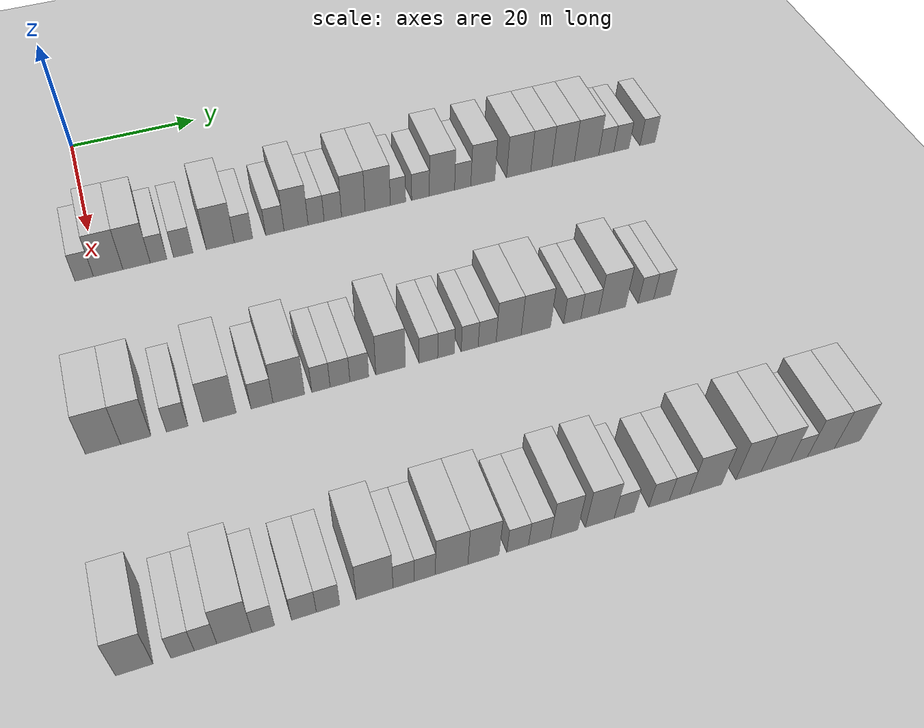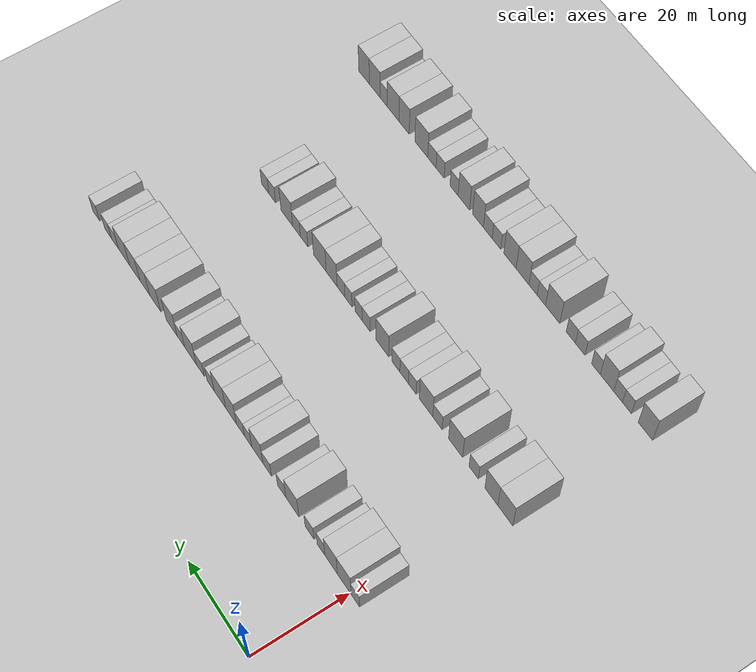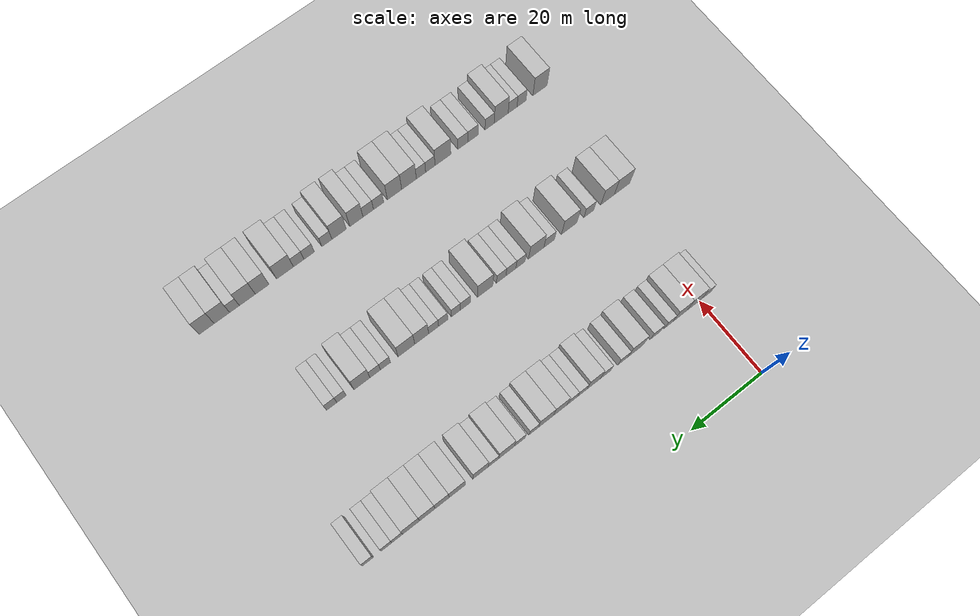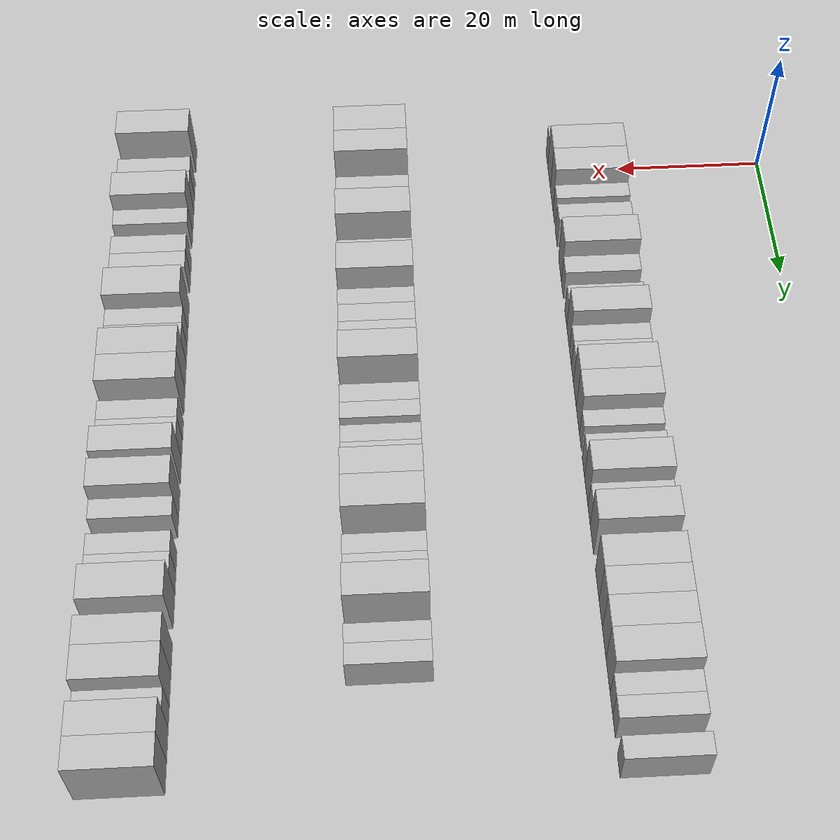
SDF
<sdf version="1.6">
 <world name="default">
  <include><name>ground_plane_1</name><uri>model://HANNAS_ground_plane</uri></include>
  <include>
   <name>ground_plane_2</name>
   <uri>model://HANNAS_ground_plane</uri>
   <pose>100 0 0  0 0 0</pose>
  </include>
  <model name="building_72">
   <static>1</static>
   <pose>25.0000 -1.7708 0 0.000000 0.000000 0.000000</pose>
   <link name="link">
    <pose>0 0 3.00 0 0 0</pose>
    <collision name="collision"><geometry><box><size>10.0000 2.6806 6.0000</size></box></geometry></collision>
    <visual name="visual">
     <cast_shadows>0</cast_shadows>
     <geometry><box><size>10.0000 2.6806 6.0000</size></box></geometry>
     <material>
      <script>
       <uri>model://HANNAS_wall/materials/scripts</uri>
       <uri>model://HANNAS_wall/materials/textures</uri>
       <name>vrc/HANNAS_wall</name>
      </script>
     </material>
    </visual>
   </link>
  </model>
  <model name="building_73">
   <static>1</static>
   <pose>25.0000 1.7090 0 0.000000 0.000000 0.000000</pose>
   <link name="link">
    <pose>0 0 4.50 0 0 0</pose>
    <collision name="collision"><geometry><box><size>10.0000 4.2791 9.0000</size></box></geometry></collision>
    <visual name="visual">
     <cast_shadows>0</cast_shadows>
     <geometry><box><size>10.0000 4.2791 9.0000</size></box></geometry>
     <material>
      <script>
       <uri>model://HANNAS_wall/materials/scripts</uri>
       <uri>model://HANNAS_wall/materials/textures</uri>
       <name>vrc/HANNAS_wall</name>
      </script>
     </material>
    </visual>
   </link>
  </model>
  <model name="building_74">
   <static>1</static>
   <pose>25.0000 5.8547 0 0.000000 0.000000 0.000000</pose>
   <link name="link">
    <pose>0 0 4.50 0 0 0</pose>
    <collision name="collision"><geometry><box><size>10.0000 4.0123 9.0000</size></box></geometry></collision>
    <visual name="visual">
     <cast_shadows>0</cast_shadows>
     <geometry><box><size>10.0000 4.0123 9.0000</size></box></geometry>
     <material>
      <script>
       <uri>model://HANNAS_wall/materials/scripts</uri>
       <uri>model://HANNAS_wall/materials/textures</uri>
       <name>vrc/HANNAS_wall</name>
      </script>
     </material>
    </visual>
   </link>
  </model>
  <model name="building_75">
   <static>1</static>
   <pose>25.0000 9.0855 0 0.000000 0.000000 0.000000</pose>
   <link name="link">
    <pose>0 0 3.00 0 0 0</pose>
    <collision name="collision"><geometry><box><size>10.0000 2.4494 6.0000</size></box></geometry></collision>
    <visual name="visual">
     <cast_shadows>0</cast_shadows>
     <geometry><box><size>10.0000 2.4494 6.0000</size></box></geometry>
     <material>
      <script>
       <uri>model://HANNAS_wall/materials/scripts</uri>
       <uri>model://HANNAS_wall/materials/textures</uri>
       <name>vrc/HANNAS_wall</name>
      </script>
     </material>
    </visual>
   </link>
  </model>
  <model name="building_76">
   <static>1</static>
   <pose>25.0000 12.7582 0 0.000000 0.000000 0.000000</pose>
   <link name="link">
    <pose>0 0 3.00 0 0 0</pose>
    <collision name="collision"><geometry><box><size>10.0000 2.8961 6.0000</size></box></geometry></collision>
    <visual name="visual">
     <cast_shadows>0</cast_shadows>
     <geometry><box><size>10.0000 2.8961 6.0000</size></box></geometry>
     <material>
      <script>
       <uri>model://HANNAS_wall/materials/scripts</uri>
       <uri>model://HANNAS_wall/materials/textures</uri>
       <name>vrc/HANNAS_wall</name>
      </script>
     </material>
    </visual>
   </link>
  </model>
  <model name="building_77">
   <static>1</static>
   <pose>25.0000 18.3284 0 0.000000 0.000000 0.000000</pose>
   <link name="link">
    <pose>0 0 4.50 0 0 0</pose>
    <collision name="collision"><geometry><box><size>10.0000 4.2442 9.0000</size></box></geometry></collision>
    <visual name="visual">
     <cast_shadows>0</cast_shadows>
     <geometry><box><size>10.0000 4.2442 9.0000</size></box></geometry>
     <material>
      <script>
       <uri>model://HANNAS_wall/materials/scripts</uri>
       <uri>model://HANNAS_wall/materials/textures</uri>
       <name>vrc/HANNAS_wall</name>
      </script>
     </material>
    </visual>
   </link>
  </model>
  <model name="building_78">
   <static>1</static>
   <pose>25.0000 21.8539 0 0.000000 0.000000 0.000000</pose>
   <link name="link">
    <pose>0 0 3.00 0 0 0</pose>
    <collision name="collision"><geometry><box><size>10.0000 2.8067 6.0000</size></box></geometry></collision>
    <visual name="visual">
     <cast_shadows>0</cast_shadows>
     <geometry><box><size>10.0000 2.8067 6.0000</size></box></geometry>
     <material>
      <script>
       <uri>model://HANNAS_wall/materials/scripts</uri>
       <uri>model://HANNAS_wall/materials/textures</uri>
       <name>vrc/HANNAS_wall</name>
      </script>
     </material>
    </visual>
   </link>
  </model>
  <model name="building_79">
   <static>1</static>
   <pose>25.0000 26.6800 0 0.000000 0.000000 0.000000</pose>
   <link name="link">
    <pose>0 0 3.00 0 0 0</pose>
    <collision name="collision"><geometry><box><size>10.0000 2.8456 6.0000</size></box></geometry></collision>
    <visual name="visual">
     <cast_shadows>0</cast_shadows>
     <geometry><box><size>10.0000 2.8456 6.0000</size></box></geometry>
     <material>
      <script>
       <uri>model://HANNAS_wall/materials/scripts</uri>
       <uri>model://HANNAS_wall/materials/textures</uri>
       <name>vrc/HANNAS_wall</name>
      </script>
     </material>
    </visual>
   </link>
  </model>
  <model name="building_80">
   <static>1</static>
   <pose>25.0000 29.9816 0 0.000000 0.000000 0.000000</pose>
   <link name="link">
    <pose>0 0 4.50 0 0 0</pose>
    <collision name="collision"><geometry><box><size>10.0000 3.7574 9.0000</size></box></geometry></collision>
    <visual name="visual">
     <cast_shadows>0</cast_shadows>
     <geometry><box><size>10.0000 3.7574 9.0000</size></box></geometry>
     <material>
      <script>
       <uri>model://HANNAS_wall/materials/scripts</uri>
       <uri>model://HANNAS_wall/materials/textures</uri>
       <name>vrc/HANNAS_wall</name>
      </script>
     </material>
    </visual>
   </link>
  </model>
  <model name="building_81">
   <static>1</static>
   <pose>25.0000 33.1149 0 0.000000 0.000000 0.000000</pose>
   <link name="link">
    <pose>0 0 3.00 0 0 0</pose>
    <collision name="collision"><geometry><box><size>10.0000 2.5092 6.0000</size></box></geometry></collision>
    <visual name="visual">
     <cast_shadows>0</cast_shadows>
     <geometry><box><size>10.0000 2.5092 6.0000</size></box></geometry>
     <material>
      <script>
       <uri>model://HANNAS_wall/materials/scripts</uri>
       <uri>model://HANNAS_wall/materials/textures</uri>
       <name>vrc/HANNAS_wall</name>
      </script>
     </material>
    </visual>
   </link>
  </model>
  <model name="building_82">
   <static>1</static>
   <pose>25.0000 35.7522 0 0.000000 0.000000 0.000000</pose>
   <link name="link">
    <pose>0 0 3.00 0 0 0</pose>
    <collision name="collision"><geometry><box><size>10.0000 2.7656 6.0000</size></box></geometry></collision>
    <visual name="visual">
     <cast_shadows>0</cast_shadows>
     <geometry><box><size>10.0000 2.7656 6.0000</size></box></geometry>
     <material>
      <script>
       <uri>model://HANNAS_wall/materials/scripts</uri>
       <uri>model://HANNAS_wall/materials/textures</uri>
       <name>vrc/HANNAS_wall</name>
      </script>
     </material>
    </visual>
   </link>
  </model>
  <model name="building_83">
   <static>1</static>
   <pose>25.0000 39.0147 0 0.000000 0.000000 0.000000</pose>
   <link name="link">
    <pose>0 0 4.50 0 0 0</pose>
    <collision name="collision"><geometry><box><size>10.0000 3.7594 9.0000</size></box></geometry></collision>
    <visual name="visual">
     <cast_shadows>0</cast_shadows>
     <geometry><box><size>10.0000 3.7594 9.0000</size></box></geometry>
     <material>
      <script>
       <uri>model://HANNAS_wall/materials/scripts</uri>
       <uri>model://HANNAS_wall/materials/textures</uri>
       <name>vrc/HANNAS_wall</name>
      </script>
     </material>
    </visual>
   </link>
  </model>
  <model name="building_84">
   <static>1</static>
   <pose>25.0000 42.9203 0 0.000000 0.000000 0.000000</pose>
   <link name="link">
    <pose>0 0 4.50 0 0 0</pose>
    <collision name="collision"><geometry><box><size>10.0000 4.0519 9.0000</size></box></geometry></collision>
    <visual name="visual">
     <cast_shadows>0</cast_shadows>
     <geometry><box><size>10.0000 4.0519 9.0000</size></box></geometry>
     <material>
      <script>
       <uri>model://HANNAS_wall/materials/scripts</uri>
       <uri>model://HANNAS_wall/materials/textures</uri>
       <name>vrc/HANNAS_wall</name>
      </script>
     </material>
    </visual>
   </link>
  </model>
  <model name="building_85">
   <static>1</static>
   <pose>25.0000 46.1844 0 0.000000 0.000000 0.000000</pose>
   <link name="link">
    <pose>0 0 3.00 0 0 0</pose>
    <collision name="collision"><geometry><box><size>10.0000 2.4764 6.0000</size></box></geometry></collision>
    <visual name="visual">
     <cast_shadows>0</cast_shadows>
     <geometry><box><size>10.0000 2.4764 6.0000</size></box></geometry>
     <material>
      <script>
       <uri>model://HANNAS_wall/materials/scripts</uri>
       <uri>model://HANNAS_wall/materials/textures</uri>
       <name>vrc/HANNAS_wall</name>
      </script>
     </material>
    </visual>
   </link>
  </model>
  <model name="building_86">
   <static>1</static>
   <pose>25.0000 49.8609 0 0.000000 0.000000 0.000000</pose>
   <link name="link">
    <pose>0 0 3.00 0 0 0</pose>
    <collision name="collision"><geometry><box><size>10.0000 2.8766 6.0000</size></box></geometry></collision>
    <visual name="visual">
     <cast_shadows>0</cast_shadows>
     <geometry><box><size>10.0000 2.8766 6.0000</size></box></geometry>
     <material>
      <script>
       <uri>model://HANNAS_wall/materials/scripts</uri>
       <uri>model://HANNAS_wall/materials/textures</uri>
       <name>vrc/HANNAS_wall</name>
      </script>
     </material>
    </visual>
   </link>
  </model>
  <model name="building_87">
   <static>1</static>
   <pose>25.0000 53.3857 0 0.000000 0.000000 0.000000</pose>
   <link name="link">
    <pose>0 0 4.50 0 0 0</pose>
    <collision name="collision"><geometry><box><size>10.0000 4.1731 9.0000</size></box></geometry></collision>
    <visual name="visual">
     <cast_shadows>0</cast_shadows>
     <geometry><box><size>10.0000 4.1731 9.0000</size></box></geometry>
     <material>
      <script>
       <uri>model://HANNAS_wall/materials/scripts</uri>
       <uri>model://HANNAS_wall/materials/textures</uri>
       <name>vrc/HANNAS_wall</name>
      </script>
     </material>
    </visual>
   </link>
  </model>
  <model name="building_88">
   <static>1</static>
   <pose>25.0000 56.8203 0 0.000000 0.000000 0.000000</pose>
   <link name="link">
    <pose>0 0 3.00 0 0 0</pose>
    <collision name="collision"><geometry><box><size>10.0000 2.6962 6.0000</size></box></geometry></collision>
    <visual name="visual">
     <cast_shadows>0</cast_shadows>
     <geometry><box><size>10.0000 2.6962 6.0000</size></box></geometry>
     <material>
      <script>
       <uri>model://HANNAS_wall/materials/scripts</uri>
       <uri>model://HANNAS_wall/materials/textures</uri>
       <name>vrc/HANNAS_wall</name>
      </script>
     </material>
    </visual>
   </link>
  </model>
  <model name="building_89">
   <static>1</static>
   <pose>25.0000 60.1842 0 0.000000 0.000000 0.000000</pose>
   <link name="link">
    <pose>0 0 4.50 0 0 0</pose>
    <collision name="collision"><geometry><box><size>10.0000 4.0316 9.0000</size></box></geometry></collision>
    <visual name="visual">
     <cast_shadows>0</cast_shadows>
     <geometry><box><size>10.0000 4.0316 9.0000</size></box></geometry>
     <material>
      <script>
       <uri>model://HANNAS_wall/materials/scripts</uri>
       <uri>model://HANNAS_wall/materials/textures</uri>
       <name>vrc/HANNAS_wall</name>
      </script>
     </material>
    </visual>
   </link>
  </model>
  <model name="building_90">
   <static>1</static>
   <pose>25.0000 66.2574 0 0.000000 0.000000 0.000000</pose>
   <link name="link">
    <pose>0 0 4.50 0 0 0</pose>
    <collision name="collision"><geometry><box><size>10.0000 4.1148 9.0000</size></box></geometry></collision>
    <visual name="visual">
     <cast_shadows>0</cast_shadows>
     <geometry><box><size>10.0000 4.1148 9.0000</size></box></geometry>
     <material>
      <script>
       <uri>model://HANNAS_wall/materials/scripts</uri>
       <uri>model://HANNAS_wall/materials/textures</uri>
       <name>vrc/HANNAS_wall</name>
      </script>
     </material>
    </visual>
   </link>
  </model>
  <model name="building_91">
   <static>1</static>
   <pose>25.0000 70.1312 0 0.000000 0.000000 0.000000</pose>
   <link name="link">
    <pose>0 0 4.50 0 0 0</pose>
    <collision name="collision"><geometry><box><size>10.0000 3.6327 9.0000</size></box></geometry></collision>
    <visual name="visual">
     <cast_shadows>0</cast_shadows>
     <geometry><box><size>10.0000 3.6327 9.0000</size></box></geometry>
     <material>
      <script>
       <uri>model://HANNAS_wall/materials/scripts</uri>
       <uri>model://HANNAS_wall/materials/textures</uri>
       <name>vrc/HANNAS_wall</name>
      </script>
     </material>
    </visual>
   </link>
  </model>
  <model name="building_92">
   <static>1</static>
   <pose>25.0000 73.9086 0 0.000000 0.000000 0.000000</pose>
   <link name="link">
    <pose>0 0 4.50 0 0 0</pose>
    <collision name="collision"><geometry><box><size>10.0000 3.9221 9.0000</size></box></geometry></collision>
    <visual name="visual">
     <cast_shadows>0</cast_shadows>
     <geometry><box><size>10.0000 3.9221 9.0000</size></box></geometry>
     <material>
      <script>
       <uri>model://HANNAS_wall/materials/scripts</uri>
       <uri>model://HANNAS_wall/materials/textures</uri>
       <name>vrc/HANNAS_wall</name>
      </script>
     </material>
    </visual>
   </link>
  </model>
  <model name="building_93">
   <static>1</static>
   <pose>25.0000 77.9996 0 0.000000 0.000000 0.000000</pose>
   <link name="link">
    <pose>0 0 4.50 0 0 0</pose>
    <collision name="collision"><geometry><box><size>10.0000 4.2598 9.0000</size></box></geometry></collision>
    <visual name="visual">
     <cast_shadows>0</cast_shadows>
     <geometry><box><size>10.0000 4.2598 9.0000</size></box></geometry>
     <material>
      <script>
       <uri>model://HANNAS_wall/materials/scripts</uri>
       <uri>model://HANNAS_wall/materials/textures</uri>
       <name>vrc/HANNAS_wall</name>
      </script>
     </material>
    </visual>
   </link>
  </model>
  <model name="building_94">
   <static>1</static>
   <pose>25.0000 81.4691 0 0.000000 0.000000 0.000000</pose>
   <link name="link">
    <pose>0 0 3.00 0 0 0</pose>
    <collision name="collision"><geometry><box><size>10.0000 2.6792 6.0000</size></box></geometry></collision>
    <visual name="visual">
     <cast_shadows>0</cast_shadows>
     <geometry><box><size>10.0000 2.6792 6.0000</size></box></geometry>
     <material>
      <script>
       <uri>model://HANNAS_wall/materials/scripts</uri>
       <uri>model://HANNAS_wall/materials/textures</uri>
       <name>vrc/HANNAS_wall</name>
      </script>
     </material>
    </visual>
   </link>
  </model>
  <model name="building_95">
   <static>1</static>
   <pose>25.0000 84.1413 0 0.000000 0.000000 0.000000</pose>
   <link name="link">
    <pose>0 0 3.00 0 0 0</pose>
    <collision name="collision"><geometry><box><size>10.0000 2.6652 6.0000</size></box></geometry></collision>
    <visual name="visual">
     <cast_shadows>0</cast_shadows>
     <geometry><box><size>10.0000 2.6652 6.0000</size></box></geometry>
     <material>
      <script>
       <uri>model://HANNAS_wall/materials/scripts</uri>
       <uri>model://HANNAS_wall/materials/textures</uri>
       <name>vrc/HANNAS_wall</name>
      </script>
     </material>
    </visual>
   </link>
  </model>
  <model name="building_96">
   <static>1</static>
   <pose>25.0000 88.8172 0 0.000000 0.000000 0.000000</pose>
   <link name="link">
    <pose>0 0 3.00 0 0 0</pose>
    <collision name="collision"><geometry><box><size>10.0000 2.6864 6.0000</size></box></geometry></collision>
    <visual name="visual">
     <cast_shadows>0</cast_shadows>
     <geometry><box><size>10.0000 2.6864 6.0000</size></box></geometry>
     <material>
      <script>
       <uri>model://HANNAS_wall/materials/scripts</uri>
       <uri>model://HANNAS_wall/materials/textures</uri>
       <name>vrc/HANNAS_wall</name>
      </script>
     </material>
    </visual>
   </link>
  </model>
  <model name="building_216">
   <static>1</static>
   <pose>55.0000 -3.3062 0 0.000000 0.000000 0.000000</pose>
   <link name="link">
    <pose>0 0 4.50 0 0 0</pose>
    <collision name="collision"><geometry><box><size>10.0000 4.4954 9.0000</size></box></geometry></collision>
    <visual name="visual">
     <cast_shadows>0</cast_shadows>
     <geometry><box><size>10.0000 4.4954 9.0000</size></box></geometry>
     <material>
      <script>
       <uri>model://HANNAS_wall/materials/scripts</uri>
       <uri>model://HANNAS_wall/materials/textures</uri>
       <name>vrc/HANNAS_wall</name>
      </script>
     </material>
    </visual>
   </link>
  </model>
  <model name="building_217">
   <static>1</static>
   <pose>55.0000 0.8998 0 0.000000 0.000000 0.000000</pose>
   <link name="link">
    <pose>0 0 4.50 0 0 0</pose>
    <collision name="collision"><geometry><box><size>10.0000 3.9165 9.0000</size></box></geometry></collision>
    <visual name="visual">
     <cast_shadows>0</cast_shadows>
     <geometry><box><size>10.0000 3.9165 9.0000</size></box></geometry>
     <material>
      <script>
       <uri>model://HANNAS_wall/materials/scripts</uri>
       <uri>model://HANNAS_wall/materials/textures</uri>
       <name>vrc/HANNAS_wall</name>
      </script>
     </material>
    </visual>
   </link>
  </model>
  <model name="building_218">
   <static>1</static>
   <pose>55.0000 6.2835 0 0.000000 0.000000 0.000000</pose>
   <link name="link">
    <pose>0 0 3.00 0 0 0</pose>
    <collision name="collision"><geometry><box><size>10.0000 2.8508 6.0000</size></box></geometry></collision>
    <visual name="visual">
     <cast_shadows>0</cast_shadows>
     <geometry><box><size>10.0000 2.8508 6.0000</size></box></geometry>
     <material>
      <script>
       <uri>model://HANNAS_wall/materials/scripts</uri>
       <uri>model://HANNAS_wall/materials/textures</uri>
       <name>vrc/HANNAS_wall</name>
      </script>
     </material>
    </visual>
   </link>
  </model>
  <model name="building_219">
   <static>1</static>
   <pose>55.0000 11.9038 0 0.000000 0.000000 0.000000</pose>
   <link name="link">
    <pose>0 0 4.50 0 0 0</pose>
    <collision name="collision"><geometry><box><size>10.0000 4.3898 9.0000</size></box></geometry></collision>
    <visual name="visual">
     <cast_shadows>0</cast_shadows>
     <geometry><box><size>10.0000 4.3898 9.0000</size></box></geometry>
     <material>
      <script>
       <uri>model://HANNAS_wall/materials/scripts</uri>
       <uri>model://HANNAS_wall/materials/textures</uri>
       <name>vrc/HANNAS_wall</name>
      </script>
     </material>
    </visual>
   </link>
  </model>
  <model name="building_220">
   <static>1</static>
   <pose>55.0000 17.5852 0 0.000000 0.000000 0.000000</pose>
   <link name="link">
    <pose>0 0 3.00 0 0 0</pose>
    <collision name="collision"><geometry><box><size>10.0000 2.9729 6.0000</size></box></geometry></collision>
    <visual name="visual">
     <cast_shadows>0</cast_shadows>
     <geometry><box><size>10.0000 2.9729 6.0000</size></box></geometry>
     <material>
      <script>
       <uri>model://HANNAS_wall/materials/scripts</uri>
       <uri>model://HANNAS_wall/materials/textures</uri>
       <name>vrc/HANNAS_wall</name>
      </script>
     </material>
    </visual>
   </link>
  </model>
  <model name="building_221">
   <static>1</static>
   <pose>55.0000 21.2303 0 0.000000 0.000000 0.000000</pose>
   <link name="link">
    <pose>0 0 4.50 0 0 0</pose>
    <collision name="collision"><geometry><box><size>10.0000 4.3172 9.0000</size></box></geometry></collision>
    <visual name="visual">
     <cast_shadows>0</cast_shadows>
     <geometry><box><size>10.0000 4.3172 9.0000</size></box></geometry>
     <material>
      <script>
       <uri>model://HANNAS_wall/materials/scripts</uri>
       <uri>model://HANNAS_wall/materials/textures</uri>
       <name>vrc/HANNAS_wall</name>
      </script>
     </material>
    </visual>
   </link>
  </model>
  <model name="building_222">
   <static>1</static>
   <pose>55.0000 25.6539 0 0.000000 0.000000 0.000000</pose>
   <link name="link">
    <pose>0 0 3.00 0 0 0</pose>
    <collision name="collision"><geometry><box><size>10.0000 2.5300 6.0000</size></box></geometry></collision>
    <visual name="visual">
     <cast_shadows>0</cast_shadows>
     <geometry><box><size>10.0000 2.5300 6.0000</size></box></geometry>
     <material>
      <script>
       <uri>model://HANNAS_wall/materials/scripts</uri>
       <uri>model://HANNAS_wall/materials/textures</uri>
       <name>vrc/HANNAS_wall</name>
      </script>
     </material>
    </visual>
   </link>
  </model>
  <model name="building_223">
   <static>1</static>
   <pose>55.0000 28.2994 0 0.000000 0.000000 0.000000</pose>
   <link name="link">
    <pose>0 0 3.00 0 0 0</pose>
    <collision name="collision"><geometry><box><size>10.0000 2.7610 6.0000</size></box></geometry></collision>
    <visual name="visual">
     <cast_shadows>0</cast_shadows>
     <geometry><box><size>10.0000 2.7610 6.0000</size></box></geometry>
     <material>
      <script>
       <uri>model://HANNAS_wall/materials/scripts</uri>
       <uri>model://HANNAS_wall/materials/textures</uri>
       <name>vrc/HANNAS_wall</name>
      </script>
     </material>
    </visual>
   </link>
  </model>
  <model name="building_224">
   <static>1</static>
   <pose>55.0000 31.0028 0 0.000000 0.000000 0.000000</pose>
   <link name="link">
    <pose>0 0 3.00 0 0 0</pose>
    <collision name="collision"><geometry><box><size>10.0000 2.6457 6.0000</size></box></geometry></collision>
    <visual name="visual">
     <cast_shadows>0</cast_shadows>
     <geometry><box><size>10.0000 2.6457 6.0000</size></box></geometry>
     <material>
      <script>
       <uri>model://HANNAS_wall/materials/scripts</uri>
       <uri>model://HANNAS_wall/materials/textures</uri>
       <name>vrc/HANNAS_wall</name>
      </script>
     </material>
    </visual>
   </link>
  </model>
  <model name="building_225">
   <static>1</static>
   <pose>55.0000 35.4206 0 0.000000 0.000000 0.000000</pose>
   <link name="link">
    <pose>0 0 4.50 0 0 0</pose>
    <collision name="collision"><geometry><box><size>10.0000 4.1900 9.0000</size></box></geometry></collision>
    <visual name="visual">
     <cast_shadows>0</cast_shadows>
     <geometry><box><size>10.0000 4.1900 9.0000</size></box></geometry>
     <material>
      <script>
       <uri>model://HANNAS_wall/materials/scripts</uri>
       <uri>model://HANNAS_wall/materials/textures</uri>
       <name>vrc/HANNAS_wall</name>
      </script>
     </material>
    </visual>
   </link>
  </model>
  <model name="building_226">
   <static>1</static>
   <pose>55.0000 40.8537 0 0.000000 0.000000 0.000000</pose>
   <link name="link">
    <pose>0 0 3.00 0 0 0</pose>
    <collision name="collision"><geometry><box><size>10.0000 2.6763 6.0000</size></box></geometry></collision>
    <visual name="visual">
     <cast_shadows>0</cast_shadows>
     <geometry><box><size>10.0000 2.6763 6.0000</size></box></geometry>
     <material>
      <script>
       <uri>model://HANNAS_wall/materials/scripts</uri>
       <uri>model://HANNAS_wall/materials/textures</uri>
       <name>vrc/HANNAS_wall</name>
      </script>
     </material>
    </visual>
   </link>
  </model>
  <model name="building_227">
   <static>1</static>
   <pose>55.0000 43.4040 0 0.000000 0.000000 0.000000</pose>
   <link name="link">
    <pose>0 0 3.00 0 0 0</pose>
    <collision name="collision"><geometry><box><size>10.0000 2.4244 6.0000</size></box></geometry></collision>
    <visual name="visual">
     <cast_shadows>0</cast_shadows>
     <geometry><box><size>10.0000 2.4244 6.0000</size></box></geometry>
     <material>
      <script>
       <uri>model://HANNAS_wall/materials/scripts</uri>
       <uri>model://HANNAS_wall/materials/textures</uri>
       <name>vrc/HANNAS_wall</name>
      </script>
     </material>
    </visual>
   </link>
  </model>
  <model name="building_228">
   <static>1</static>
   <pose>55.0000 46.8591 0 0.000000 0.000000 0.000000</pose>
   <link name="link">
    <pose>0 0 3.00 0 0 0</pose>
    <collision name="collision"><geometry><box><size>10.0000 2.4857 6.0000</size></box></geometry></collision>
    <visual name="visual">
     <cast_shadows>0</cast_shadows>
     <geometry><box><size>10.0000 2.4857 6.0000</size></box></geometry>
     <material>
      <script>
       <uri>model://HANNAS_wall/materials/scripts</uri>
       <uri>model://HANNAS_wall/materials/textures</uri>
       <name>vrc/HANNAS_wall</name>
      </script>
     </material>
    </visual>
   </link>
  </model>
  <model name="building_229">
   <static>1</static>
   <pose>55.0000 49.4306 0 0.000000 0.000000 0.000000</pose>
   <link name="link">
    <pose>0 0 3.00 0 0 0</pose>
    <collision name="collision"><geometry><box><size>10.0000 2.6574 6.0000</size></box></geometry></collision>
    <visual name="visual">
     <cast_shadows>0</cast_shadows>
     <geometry><box><size>10.0000 2.6574 6.0000</size></box></geometry>
     <material>
      <script>
       <uri>model://HANNAS_wall/materials/scripts</uri>
       <uri>model://HANNAS_wall/materials/textures</uri>
       <name>vrc/HANNAS_wall</name>
      </script>
     </material>
    </visual>
   </link>
  </model>
  <model name="building_230">
   <static>1</static>
   <pose>55.0000 52.6268 0 0.000000 0.000000 0.000000</pose>
   <link name="link">
    <pose>0 0 4.50 0 0 0</pose>
    <collision name="collision"><geometry><box><size>10.0000 3.7349 9.0000</size></box></geometry></collision>
    <visual name="visual">
     <cast_shadows>0</cast_shadows>
     <geometry><box><size>10.0000 3.7349 9.0000</size></box></geometry>
     <material>
      <script>
       <uri>model://HANNAS_wall/materials/scripts</uri>
       <uri>model://HANNAS_wall/materials/textures</uri>
       <name>vrc/HANNAS_wall</name>
      </script>
     </material>
    </visual>
   </link>
  </model>
  <model name="building_231">
   <static>1</static>
   <pose>55.0000 56.7086 0 0.000000 0.000000 0.000000</pose>
   <link name="link">
    <pose>0 0 4.50 0 0 0</pose>
    <collision name="collision"><geometry><box><size>10.0000 4.4288 9.0000</size></box></geometry></collision>
    <visual name="visual">
     <cast_shadows>0</cast_shadows>
     <geometry><box><size>10.0000 4.4288 9.0000</size></box></geometry>
     <material>
      <script>
       <uri>model://HANNAS_wall/materials/scripts</uri>
       <uri>model://HANNAS_wall/materials/textures</uri>
       <name>vrc/HANNAS_wall</name>
      </script>
     </material>
    </visual>
   </link>
  </model>
  <model name="building_232">
   <static>1</static>
   <pose>55.0000 62.2473 0 0.000000 0.000000 0.000000</pose>
   <link name="link">
    <pose>0 0 3.00 0 0 0</pose>
    <collision name="collision"><geometry><box><size>10.0000 2.6487 6.0000</size></box></geometry></collision>
    <visual name="visual">
     <cast_shadows>0</cast_shadows>
     <geometry><box><size>10.0000 2.6487 6.0000</size></box></geometry>
     <material>
      <script>
       <uri>model://HANNAS_wall/materials/scripts</uri>
       <uri>model://HANNAS_wall/materials/textures</uri>
       <name>vrc/HANNAS_wall</name>
      </script>
     </material>
    </visual>
   </link>
  </model>
  <model name="building_233">
   <static>1</static>
   <pose>55.0000 64.9470 0 0.000000 0.000000 0.000000</pose>
   <link name="link">
    <pose>0 0 3.00 0 0 0</pose>
    <collision name="collision"><geometry><box><size>10.0000 2.7505 6.0000</size></box></geometry></collision>
    <visual name="visual">
     <cast_shadows>0</cast_shadows>
     <geometry><box><size>10.0000 2.7505 6.0000</size></box></geometry>
     <material>
      <script>
       <uri>model://HANNAS_wall/materials/scripts</uri>
       <uri>model://HANNAS_wall/materials/textures</uri>
       <name>vrc/HANNAS_wall</name>
      </script>
     </material>
    </visual>
   </link>
  </model>
  <model name="building_234">
   <static>1</static>
   <pose>55.0000 68.4129 0 0.000000 0.000000 0.000000</pose>
   <link name="link">
    <pose>0 0 4.50 0 0 0</pose>
    <collision name="collision"><geometry><box><size>10.0000 4.1814 9.0000</size></box></geometry></collision>
    <visual name="visual">
     <cast_shadows>0</cast_shadows>
     <geometry><box><size>10.0000 4.1814 9.0000</size></box></geometry>
     <material>
      <script>
       <uri>model://HANNAS_wall/materials/scripts</uri>
       <uri>model://HANNAS_wall/materials/textures</uri>
       <name>vrc/HANNAS_wall</name>
      </script>
     </material>
    </visual>
   </link>
  </model>
  <model name="building_235">
   <static>1</static>
   <pose>55.0000 73.7188 0 0.000000 0.000000 0.000000</pose>
   <link name="link">
    <pose>0 0 3.00 0 0 0</pose>
    <collision name="collision"><geometry><box><size>10.0000 2.4304 6.0000</size></box></geometry></collision>
    <visual name="visual">
     <cast_shadows>0</cast_shadows>
     <geometry><box><size>10.0000 2.4304 6.0000</size></box></geometry>
     <material>
      <script>
       <uri>model://HANNAS_wall/materials/scripts</uri>
       <uri>model://HANNAS_wall/materials/textures</uri>
       <name>vrc/HANNAS_wall</name>
      </script>
     </material>
    </visual>
   </link>
  </model>
  <model name="building_236">
   <static>1</static>
   <pose>55.0000 76.2696 0 0.000000 0.000000 0.000000</pose>
   <link name="link">
    <pose>0 0 3.00 0 0 0</pose>
    <collision name="collision"><geometry><box><size>10.0000 2.6713 6.0000</size></box></geometry></collision>
    <visual name="visual">
     <cast_shadows>0</cast_shadows>
     <geometry><box><size>10.0000 2.6713 6.0000</size></box></geometry>
     <material>
      <script>
       <uri>model://HANNAS_wall/materials/scripts</uri>
       <uri>model://HANNAS_wall/materials/textures</uri>
       <name>vrc/HANNAS_wall</name>
      </script>
     </material>
    </visual>
   </link>
  </model>
  <model name="building_354">
   <static>1</static>
   <pose>85.0000 -4.0961 0 0.000000 0.000000 0.000000</pose>
   <link name="link">
    <pose>0 0 4.50 0 0 0</pose>
    <collision name="collision"><geometry><box><size>10.0000 4.1852 9.0000</size></box></geometry></collision>
    <visual name="visual">
     <cast_shadows>0</cast_shadows>
     <geometry><box><size>10.0000 4.1852 9.0000</size></box></geometry>
     <material>
      <script>
       <uri>model://HANNAS_wall/materials/scripts</uri>
       <uri>model://HANNAS_wall/materials/textures</uri>
       <name>vrc/HANNAS_wall</name>
      </script>
     </material>
    </visual>
   </link>
  </model>
  <model name="building_355">
   <static>1</static>
   <pose>85.0000 1.3274 0 0.000000 0.000000 0.000000</pose>
   <link name="link">
    <pose>0 0 3.00 0 0 0</pose>
    <collision name="collision"><geometry><box><size>10.0000 2.6619 6.0000</size></box></geometry></collision>
    <visual name="visual">
     <cast_shadows>0</cast_shadows>
     <geometry><box><size>10.0000 2.6619 6.0000</size></box></geometry>
     <material>
      <script>
       <uri>model://HANNAS_wall/materials/scripts</uri>
       <uri>model://HANNAS_wall/materials/textures</uri>
       <name>vrc/HANNAS_wall</name>
      </script>
     </material>
    </visual>
   </link>
  </model>
  <model name="building_356">
   <static>1</static>
   <pose>85.0000 3.9432 0 0.000000 0.000000 0.000000</pose>
   <link name="link">
    <pose>0 0 3.00 0 0 0</pose>
    <collision name="collision"><geometry><box><size>10.0000 2.5695 6.0000</size></box></geometry></collision>
    <visual name="visual">
     <cast_shadows>0</cast_shadows>
     <geometry><box><size>10.0000 2.5695 6.0000</size></box></geometry>
     <material>
      <script>
       <uri>model://HANNAS_wall/materials/scripts</uri>
       <uri>model://HANNAS_wall/materials/textures</uri>
       <name>vrc/HANNAS_wall</name>
      </script>
     </material>
    </visual>
   </link>
  </model>
  <model name="building_357">
   <static>1</static>
   <pose>85.0000 7.2577 0 0.000000 0.000000 0.000000</pose>
   <link name="link">
    <pose>0 0 4.50 0 0 0</pose>
    <collision name="collision"><geometry><box><size>10.0000 4.0595 9.0000</size></box></geometry></collision>
    <visual name="visual">
     <cast_shadows>0</cast_shadows>
     <geometry><box><size>10.0000 4.0595 9.0000</size></box></geometry>
     <material>
      <script>
       <uri>model://HANNAS_wall/materials/scripts</uri>
       <uri>model://HANNAS_wall/materials/textures</uri>
       <name>vrc/HANNAS_wall</name>
      </script>
     </material>
    </visual>
   </link>
  </model>
  <model name="building_358">
   <static>1</static>
   <pose>85.0000 10.6080 0 0.000000 0.000000 0.000000</pose>
   <link name="link">
    <pose>0 0 3.00 0 0 0</pose>
    <collision name="collision"><geometry><box><size>10.0000 2.6412 6.0000</size></box></geometry></collision>
    <visual name="visual">
     <cast_shadows>0</cast_shadows>
     <geometry><box><size>10.0000 2.6412 6.0000</size></box></geometry>
     <material>
      <script>
       <uri>model://HANNAS_wall/materials/scripts</uri>
       <uri>model://HANNAS_wall/materials/textures</uri>
       <name>vrc/HANNAS_wall</name>
      </script>
     </material>
    </visual>
   </link>
  </model>
  <model name="building_359">
   <static>1</static>
   <pose>85.0000 15.4079 0 0.000000 0.000000 0.000000</pose>
   <link name="link">
    <pose>0 0 3.00 0 0 0</pose>
    <collision name="collision"><geometry><box><size>10.0000 2.9587 6.0000</size></box></geometry></collision>
    <visual name="visual">
     <cast_shadows>0</cast_shadows>
     <geometry><box><size>10.0000 2.9587 6.0000</size></box></geometry>
     <material>
      <script>
       <uri>model://HANNAS_wall/materials/scripts</uri>
       <uri>model://HANNAS_wall/materials/textures</uri>
       <name>vrc/HANNAS_wall</name>
      </script>
     </material>
    </visual>
   </link>
  </model>
  <model name="building_360">
   <static>1</static>
   <pose>85.0000 18.2851 0 0.000000 0.000000 0.000000</pose>
   <link name="link">
    <pose>0 0 3.00 0 0 0</pose>
    <collision name="collision"><geometry><box><size>10.0000 2.7956 6.0000</size></box></geometry></collision>
    <visual name="visual">
     <cast_shadows>0</cast_shadows>
     <geometry><box><size>10.0000 2.7956 6.0000</size></box></geometry>
     <material>
      <script>
       <uri>model://HANNAS_wall/materials/scripts</uri>
       <uri>model://HANNAS_wall/materials/textures</uri>
       <name>vrc/HANNAS_wall</name>
      </script>
     </material>
    </visual>
   </link>
  </model>
  <model name="building_361">
   <static>1</static>
   <pose>85.0000 23.9215 0 0.000000 0.000000 0.000000</pose>
   <link name="link">
    <pose>0 0 4.50 0 0 0</pose>
    <collision name="collision"><geometry><box><size>10.0000 4.4773 9.0000</size></box></geometry></collision>
    <visual name="visual">
     <cast_shadows>0</cast_shadows>
     <geometry><box><size>10.0000 4.4773 9.0000</size></box></geometry>
     <material>
      <script>
       <uri>model://HANNAS_wall/materials/scripts</uri>
       <uri>model://HANNAS_wall/materials/textures</uri>
       <name>vrc/HANNAS_wall</name>
      </script>
     </material>
    </visual>
   </link>
  </model>
  <model name="building_362">
   <static>1</static>
   <pose>85.0000 27.4755 0 0.000000 0.000000 0.000000</pose>
   <link name="link">
    <pose>0 0 3.00 0 0 0</pose>
    <collision name="collision"><geometry><box><size>10.0000 2.6306 6.0000</size></box></geometry></collision>
    <visual name="visual">
     <cast_shadows>0</cast_shadows>
     <geometry><box><size>10.0000 2.6306 6.0000</size></box></geometry>
     <material>
      <script>
       <uri>model://HANNAS_wall/materials/scripts</uri>
       <uri>model://HANNAS_wall/materials/textures</uri>
       <name>vrc/HANNAS_wall</name>
      </script>
     </material>
    </visual>
   </link>
  </model>
  <model name="building_363">
   <static>1</static>
   <pose>85.0000 30.0959 0 0.000000 0.000000 0.000000</pose>
   <link name="link">
    <pose>0 0 3.00 0 0 0</pose>
    <collision name="collision"><geometry><box><size>10.0000 2.6103 6.0000</size></box></geometry></collision>
    <visual name="visual">
     <cast_shadows>0</cast_shadows>
     <geometry><box><size>10.0000 2.6103 6.0000</size></box></geometry>
     <material>
      <script>
       <uri>model://HANNAS_wall/materials/scripts</uri>
       <uri>model://HANNAS_wall/materials/textures</uri>
       <name>vrc/HANNAS_wall</name>
      </script>
     </material>
    </visual>
   </link>
  </model>
  <model name="building_364">
   <static>1</static>
   <pose>85.0000 33.4512 0 0.000000 0.000000 0.000000</pose>
   <link name="link">
    <pose>0 0 4.50 0 0 0</pose>
    <collision name="collision"><geometry><box><size>10.0000 4.1004 9.0000</size></box></geometry></collision>
    <visual name="visual">
     <cast_shadows>0</cast_shadows>
     <geometry><box><size>10.0000 4.1004 9.0000</size></box></geometry>
     <material>
      <script>
       <uri>model://HANNAS_wall/materials/scripts</uri>
       <uri>model://HANNAS_wall/materials/textures</uri>
       <name>vrc/HANNAS_wall</name>
      </script>
     </material>
    </visual>
   </link>
  </model>
  <model name="building_365">
   <static>1</static>
   <pose>85.0000 37.4880 0 0.000000 0.000000 0.000000</pose>
   <link name="link">
    <pose>0 0 4.50 0 0 0</pose>
    <collision name="collision"><geometry><box><size>10.0000 3.9732 9.0000</size></box></geometry></collision>
    <visual name="visual">
     <cast_shadows>0</cast_shadows>
     <geometry><box><size>10.0000 3.9732 9.0000</size></box></geometry>
     <material>
      <script>
       <uri>model://HANNAS_wall/materials/scripts</uri>
       <uri>model://HANNAS_wall/materials/textures</uri>
       <name>vrc/HANNAS_wall</name>
      </script>
     </material>
    </visual>
   </link>
  </model>
  <model name="building_366">
   <static>1</static>
   <pose>85.0000 41.8734 0 0.000000 0.000000 0.000000</pose>
   <link name="link">
    <pose>0 0 3.00 0 0 0</pose>
    <collision name="collision"><geometry><box><size>10.0000 2.7974 6.0000</size></box></geometry></collision>
    <visual name="visual">
     <cast_shadows>0</cast_shadows>
     <geometry><box><size>10.0000 2.7974 6.0000</size></box></geometry>
     <material>
      <script>
       <uri>model://HANNAS_wall/materials/scripts</uri>
       <uri>model://HANNAS_wall/materials/textures</uri>
       <name>vrc/HANNAS_wall</name>
      </script>
     </material>
    </visual>
   </link>
  </model>
  <model name="building_367">
   <static>1</static>
   <pose>85.0000 44.7090 0 0.000000 0.000000 0.000000</pose>
   <link name="link">
    <pose>0 0 3.00 0 0 0</pose>
    <collision name="collision"><geometry><box><size>10.0000 2.8738 6.0000</size></box></geometry></collision>
    <visual name="visual">
     <cast_shadows>0</cast_shadows>
     <geometry><box><size>10.0000 2.8738 6.0000</size></box></geometry>
     <material>
      <script>
       <uri>model://HANNAS_wall/materials/scripts</uri>
       <uri>model://HANNAS_wall/materials/textures</uri>
       <name>vrc/HANNAS_wall</name>
      </script>
     </material>
    </visual>
   </link>
  </model>
  <model name="building_368">
   <static>1</static>
   <pose>85.0000 47.9462 0 0.000000 0.000000 0.000000</pose>
   <link name="link">
    <pose>0 0 4.50 0 0 0</pose>
    <collision name="collision"><geometry><box><size>10.0000 3.6007 9.0000</size></box></geometry></collision>
    <visual name="visual">
     <cast_shadows>0</cast_shadows>
     <geometry><box><size>10.0000 3.6007 9.0000</size></box></geometry>
     <material>
      <script>
       <uri>model://HANNAS_wall/materials/scripts</uri>
       <uri>model://HANNAS_wall/materials/textures</uri>
       <name>vrc/HANNAS_wall</name>
      </script>
     </material>
    </visual>
   </link>
  </model>
  <model name="building_369">
   <static>1</static>
   <pose>85.0000 52.6833 0 0.000000 0.000000 0.000000</pose>
   <link name="link">
    <pose>0 0 4.50 0 0 0</pose>
    <collision name="collision"><geometry><box><size>10.0000 3.8734 9.0000</size></box></geometry></collision>
    <visual name="visual">
     <cast_shadows>0</cast_shadows>
     <geometry><box><size>10.0000 3.8734 9.0000</size></box></geometry>
     <material>
      <script>
       <uri>model://HANNAS_wall/materials/scripts</uri>
       <uri>model://HANNAS_wall/materials/textures</uri>
       <name>vrc/HANNAS_wall</name>
      </script>
     </material>
    </visual>
   </link>
  </model>
  <model name="building_370">
   <static>1</static>
   <pose>85.0000 55.9767 0 0.000000 0.000000 0.000000</pose>
   <link name="link">
    <pose>0 0 3.00 0 0 0</pose>
    <collision name="collision"><geometry><box><size>10.0000 2.7134 6.0000</size></box></geometry></collision>
    <visual name="visual">
     <cast_shadows>0</cast_shadows>
     <geometry><box><size>10.0000 2.7134 6.0000</size></box></geometry>
     <material>
      <script>
       <uri>model://HANNAS_wall/materials/scripts</uri>
       <uri>model://HANNAS_wall/materials/textures</uri>
       <name>vrc/HANNAS_wall</name>
      </script>
     </material>
    </visual>
   </link>
  </model>
  <model name="building_371">
   <static>1</static>
   <pose>85.0000 60.7255 0 0.000000 0.000000 0.000000</pose>
   <link name="link">
    <pose>0 0 3.00 0 0 0</pose>
    <collision name="collision"><geometry><box><size>10.0000 2.7840 6.0000</size></box></geometry></collision>
    <visual name="visual">
     <cast_shadows>0</cast_shadows>
     <geometry><box><size>10.0000 2.7840 6.0000</size></box></geometry>
     <material>
      <script>
       <uri>model://HANNAS_wall/materials/scripts</uri>
       <uri>model://HANNAS_wall/materials/textures</uri>
       <name>vrc/HANNAS_wall</name>
      </script>
     </material>
    </visual>
   </link>
  </model>
  <model name="building_372">
   <static>1</static>
   <pose>85.0000 63.5277 0 0.000000 0.000000 0.000000</pose>
   <link name="link">
    <pose>0 0 3.00 0 0 0</pose>
    <collision name="collision"><geometry><box><size>10.0000 2.8204 6.0000</size></box></geometry></collision>
    <visual name="visual">
     <cast_shadows>0</cast_shadows>
     <geometry><box><size>10.0000 2.8204 6.0000</size></box></geometry>
     <material>
      <script>
       <uri>model://HANNAS_wall/materials/scripts</uri>
       <uri>model://HANNAS_wall/materials/textures</uri>
       <name>vrc/HANNAS_wall</name>
      </script>
     </material>
    </visual>
   </link>
  </model>
  <model name="building_373">
   <static>1</static>
   <pose>85.0000 67.1777 0 0.000000 0.000000 0.000000</pose>
   <link name="link">
    <pose>0 0 4.50 0 0 0</pose>
    <collision name="collision"><geometry><box><size>10.0000 4.4795 9.0000</size></box></geometry></collision>
    <visual name="visual">
     <cast_shadows>0</cast_shadows>
     <geometry><box><size>10.0000 4.4795 9.0000</size></box></geometry>
     <material>
      <script>
       <uri>model://HANNAS_wall/materials/scripts</uri>
       <uri>model://HANNAS_wall/materials/textures</uri>
       <name>vrc/HANNAS_wall</name>
      </script>
     </material>
    </visual>
   </link>
  </model>
  <model name="building_374">
   <static>1</static>
   <pose>85.0000 73.2181 0 0.000000 0.000000 0.000000</pose>
   <link name="link">
    <pose>0 0 4.50 0 0 0</pose>
    <collision name="collision"><geometry><box><size>10.0000 3.6014 9.0000</size></box></geometry></collision>
    <visual name="visual">
     <cast_shadows>0</cast_shadows>
     <geometry><box><size>10.0000 3.6014 9.0000</size></box></geometry>
     <material>
      <script>
       <uri>model://HANNAS_wall/materials/scripts</uri>
       <uri>model://HANNAS_wall/materials/textures</uri>
       <name>vrc/HANNAS_wall</name>
      </script>
     </material>
    </visual>
   </link>
  </model>
  <model name="building_375">
   <static>1</static>
   <pose>85.0000 77.1022 0 0.000000 0.000000 0.000000</pose>
   <link name="link">
    <pose>0 0 4.50 0 0 0</pose>
    <collision name="collision"><geometry><box><size>10.0000 4.1666 9.0000</size></box></geometry></collision>
    <visual name="visual">
     <cast_shadows>0</cast_shadows>
     <geometry><box><size>10.0000 4.1666 9.0000</size></box></geometry>
     <material>
      <script>
       <uri>model://HANNAS_wall/materials/scripts</uri>
       <uri>model://HANNAS_wall/materials/textures</uri>
       <name>vrc/HANNAS_wall</name>
      </script>
     </material>
    </visual>
   </link>
  </model>
  <model name="building_376">
   <static>1</static>
   <pose>85.0000 80.4407 0 0.000000 0.000000 0.000000</pose>
   <link name="link">
    <pose>0 0 3.00 0 0 0</pose>
    <collision name="collision"><geometry><box><size>10.0000 2.5105 6.0000</size></box></geometry></collision>
    <visual name="visual">
     <cast_shadows>0</cast_shadows>
     <geometry><box><size>10.0000 2.5105 6.0000</size></box></geometry>
     <material>
      <script>
       <uri>model://HANNAS_wall/materials/scripts</uri>
       <uri>model://HANNAS_wall/materials/textures</uri>
       <name>vrc/HANNAS_wall</name>
      </script>
     </material>
    </visual>
   </link>
  </model>
  <model name="building_377">
   <static>1</static>
   <pose>85.0000 83.6797 0 0.000000 0.000000 0.000000</pose>
   <link name="link">
    <pose>0 0 4.50 0 0 0</pose>
    <collision name="collision"><geometry><box><size>10.0000 3.9676 9.0000</size></box></geometry></collision>
    <visual name="visual">
     <cast_shadows>0</cast_shadows>
     <geometry><box><size>10.0000 3.9676 9.0000</size></box></geometry>
     <material>
      <script>
       <uri>model://HANNAS_wall/materials/scripts</uri>
       <uri>model://HANNAS_wall/materials/textures</uri>
       <name>vrc/HANNAS_wall</name>
      </script>
     </material>
    </visual>
   </link>
  </model>
  <model name="building_378">
   <static>1</static>
   <pose>85.0000 87.5908 0 0.000000 0.000000 0.000000</pose>
   <link name="link">
    <pose>0 0 4.50 0 0 0</pose>
    <collision name="collision"><geometry><box><size>10.0000 3.8546 9.0000</size></box></geometry></collision>
    <visual name="visual">
     <cast_shadows>0</cast_shadows>
     <geometry><box><size>10.0000 3.8546 9.0000</size></box></geometry>
     <material>
      <script>
       <uri>model://HANNAS_wall/materials/scripts</uri>
       <uri>model://HANNAS_wall/materials/textures</uri>
       <name>vrc/HANNAS_wall</name>
      </script>
     </material>
    </visual>
   </link>
  </model>
 </world>
</sdf>
